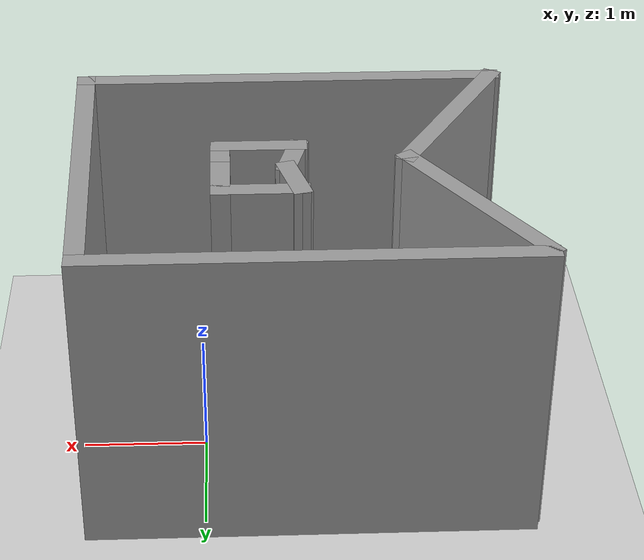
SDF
<sdf version="1.7">
 <world name="default">
  <scene><ambient>0.4 0.4 0.4 1</ambient><background>0.7 0.7 0.7 1</background><shadows>1</shadows></scene>
  <light name="sun" type="directional">
   <pose>0 0 10 0 -0 0</pose>
   <diffuse>0.8 0.8 0.8 1</diffuse>
   <specular>0.2 0.2 0.2 1</specular>
   <attenuation>
    <range>1000</range>
    <constant>0.9</constant>
    <linear>0.01</linear>
    <quadratic>0.001</quadratic>
   </attenuation>
   <direction>-0.5 0.1 -0.9</direction>
   <spot><inner_angle>0</inner_angle><outer_angle>0</outer_angle><falloff>0</falloff></spot>
  </light>
  <model name="ground_plane">
   <static>1</static>
   <link name="link">
    <collision name="collision">
     <geometry><plane><normal>0 0 1</normal><size>100 100</size></plane></geometry>
     <surface>
      <contact><collide_bitmask>65535</collide_bitmask></contact>
      <friction><ode><mu>100</mu><mu2>50</mu2></ode></friction>
     </surface>
    </collision>
    <visual name="visual">
     <cast_shadows>0</cast_shadows>
     <geometry><plane><normal>0 0 1</normal><size>100 100</size></plane></geometry>
     <material>
      <script><uri>file://media/materials/scripts/gazebo.material</uri><name>Gazebo/Grey</name></script>
     </material>
    </visual>
   </link>
  </model>
  <physics type="ode">
   <real_time_update_rate>1000</real_time_update_rate>
   <max_step_size>0.001</max_step_size>
   <real_time_factor>1</real_time_factor>
   <ode>
    <solver>
     <type>quick</type>
     <iters>150</iters>
     <precon_iters>0</precon_iters>
     <sor>1.4</sor>
     <use_dynamic_moi_rescaling>1</use_dynamic_moi_rescaling>
    </solver>
    <constraints>
     <cfm>1e-05</cfm>
     <erp>0.2</erp>
     <contact_max_correcting_vel>2000</contact_max_correcting_vel>
     <contact_surface_layer>0.01</contact_surface_layer>
    </constraints>
   </ode>
  </physics>
  <gravity>0 0 -9.8</gravity>
  <magnetic_field>6e-06 2.3e-05 -4.2e-05</magnetic_field>
  <atmosphere type="adiabatic"/>
  <spherical_coordinates>
   <surface_model>EARTH_WGS84</surface_model>
   <latitude_deg>0</latitude_deg>
   <longitude_deg>0</longitude_deg>
   <elevation>0</elevation>
   <heading_deg>0</heading_deg>
  </spherical_coordinates>
  <model name="world3">
   <pose>-0.793871 0.274171 0 0 -0 0</pose>
   <link name="Wall_0">
    <collision name="Wall_0_Collision">
     <geometry><box><size>2.92179 0.15 2.5</size></box></geometry>
     <pose>0 0 1.25 0 -0 0</pose>
    </collision>
    <visual name="Wall_0_Visual">
     <pose>0 0 1.25 0 -0 0</pose>
     <geometry><box><size>2.92179 0.15 2.5</size></box></geometry>
     <material>
      <script><uri>file://media/materials/scripts/gazebo.material</uri><name>Gazebo/Grey</name></script>
      <ambient>1 1 1 1</ambient>
     </material>
     <meta><layer>0</layer></meta>
    </visual>
    <pose>1.68952 -0.583449 0 0 -0 -1.54217</pose>
   </link>
   <link name="Wall_2">
    <collision name="Wall_2_Collision">
     <geometry><box><size>3.5 0.15 2.5</size></box></geometry>
     <pose>0 0 1.25 0 -0 0</pose>
    </collision>
    <visual name="Wall_2_Visual">
     <pose>0 0 1.25 0 -0 0</pose>
     <geometry><box><size>3.5 0.15 2.5</size></box></geometry>
     <material>
      <script><uri>file://media/materials/scripts/gazebo.material</uri><name>Gazebo/Grey</name></script>
      <ambient>1 1 1 1</ambient>
     </material>
     <meta><layer>0</layer></meta>
    </visual>
    <pose>0.0542 -1.96877 0 0 -0 3.14159</pose>
   </link>
   <link name="Wall_20">
    <collision name="Wall_20_Collision">
     <geometry><box><size>0.5 0.15 2.5</size></box></geometry>
     <pose>0 0 1.25 0 -0 0</pose>
    </collision>
    <visual name="Wall_20_Visual">
     <pose>0 0 1.25 0 -0 0</pose>
     <geometry><box><size>0.5 0.15 2.5</size></box></geometry>
     <material>
      <script><uri>file://media/materials/scripts/gazebo.material</uri><name>Gazebo/Grey</name></script>
      <ambient>1 1 1 1</ambient>
     </material>
     <meta><layer>0</layer></meta>
    </visual>
    <pose>0.625325 -0.292874 0 0 -0 1.5708</pose>
   </link>
   <link name="Wall_21">
    <collision name="Wall_21_Collision">
     <geometry><box><size>0.75 0.15 2.5</size></box></geometry>
     <pose>0 0 1.25 0 -0 0</pose>
    </collision>
    <visual name="Wall_21_Visual">
     <pose>0 0 1.25 0 -0 0</pose>
     <geometry><box><size>0.75 0.15 2.5</size></box></geometry>
     <material>
      <script><uri>file://media/materials/scripts/gazebo.material</uri><name>Gazebo/Grey</name></script>
      <ambient>1 1 1 1</ambient>
     </material>
     <meta><layer>0</layer></meta>
    </visual>
    <pose>0.325325 -0.117874 0 0 -0 3.14159</pose>
   </link>
   <link name="Wall_22">
    <collision name="Wall_22_Collision">
     <geometry><box><size>0.5 0.15 2.5</size></box></geometry>
     <pose>0 0 1.25 0 -0 0</pose>
    </collision>
    <visual name="Wall_22_Visual">
     <pose>0 0 1.25 0 -0 0</pose>
     <geometry><box><size>0.5 0.15 2.5</size></box></geometry>
     <material>
      <script><uri>file://media/materials/scripts/gazebo.material</uri><name>Gazebo/Grey</name></script>
      <ambient>1 1 1 1</ambient>
     </material>
     <meta><layer>0</layer></meta>
    </visual>
    <pose>0.070618 -0.286911 0 0 -0 -1.309</pose>
   </link>
   <link name="Wall_23">
    <collision name="Wall_23_Collision">
     <geometry><box><size>0.5 0.15 2.5</size></box></geometry>
     <pose>0 0 1.25 0 -0 0</pose>
    </collision>
    <visual name="Wall_23_Visual">
     <pose>0 0 1.25 0 -0 0</pose>
     <geometry><box><size>0.5 0.15 2.5</size></box></geometry>
     <material>
      <script><uri>file://media/materials/scripts/gazebo.material</uri><name>Gazebo/Grey</name></script>
      <ambient>1 1 1 1</ambient>
     </material>
     <meta><layer>0</layer></meta>
    </visual>
    <pose>0.070618 -0.624985 0 0 -0 -1.8326</pose>
   </link>
   <link name="Wall_24">
    <collision name="Wall_24_Collision">
     <geometry><box><size>0.75 0.15 2.5</size></box></geometry>
     <pose>0 0 1.25 0 -0 0</pose>
    </collision>
    <visual name="Wall_24_Visual">
     <pose>0 0 1.25 0 -0 0</pose>
     <geometry><box><size>0.75 0.15 2.5</size></box></geometry>
     <material>
      <script><uri>file://media/materials/scripts/gazebo.material</uri><name>Gazebo/Grey</name></script>
      <ambient>1 1 1 1</ambient>
     </material>
     <meta><layer>0</layer></meta>
    </visual>
    <pose>0.325325 -0.794022 0 0 -0 0</pose>
   </link>
   <link name="Wall_25">
    <collision name="Wall_25_Collision">
     <geometry><box><size>0.476148 0.15 2.5</size></box></geometry>
     <pose>0 0 1.25 0 -0 0</pose>
    </collision>
    <visual name="Wall_25_Visual">
     <pose>0 0 1.25 0 -0 0</pose>
     <geometry><box><size>0.476148 0.15 2.5</size></box></geometry>
     <material>
      <script><uri>file://media/materials/scripts/gazebo.material</uri><name>Gazebo/Grey</name></script>
      <ambient>1 1 1 1</ambient>
     </material>
     <meta><layer>0</layer></meta>
    </visual>
    <pose>0.625325 -0.630948 0 0 -0 1.5708</pose>
   </link>
   <link name="Wall_3">
    <collision name="Wall_3_Collision">
     <geometry><box><size>1.75 0.15 2.5</size></box></geometry>
     <pose>0 0 1.25 0 -0 0</pose>
    </collision>
    <visual name="Wall_3_Visual">
     <pose>0 0 1.25 0 -0 0</pose>
     <geometry><box><size>1.75 0.15 2.5</size></box></geometry>
     <material>
      <script><uri>file://media/materials/scripts/gazebo.material</uri><name>Gazebo/Grey</name></script>
      <ambient>1 1 1 1</ambient>
     </material>
     <meta><layer>0</layer></meta>
    </visual>
    <pose>-1.2208 -1.27595 0 0 -0 1.0472</pose>
   </link>
   <link name="Wall_4">
    <collision name="Wall_4_Collision">
     <geometry><box><size>1.78421 0.15 2.5</size></box></geometry>
     <pose>0 0 1.25 0 -0 0</pose>
    </collision>
    <visual name="Wall_4_Visual">
     <pose>0 0 1.25 0 -0 0</pose>
     <geometry><box><size>1.78421 0.15 2.5</size></box></geometry>
     <material>
      <script><uri>file://media/materials/scripts/gazebo.material</uri><name>Gazebo/Grey</name></script>
      <ambient>1 1 1 1</ambient>
     </material>
     <meta><layer>0</layer></meta>
    </visual>
    <pose>-1.26175 0.104781 0 0 -0 2.14082</pose>
   </link>
   <link name="Wall_6">
    <collision name="Wall_6_Collision">
     <geometry><box><size>3.5 0.15 2.5</size></box></geometry>
     <pose>0 0 1.25 0 -0 0</pose>
    </collision>
    <visual name="Wall_6_Visual">
     <pose>0 0 1.25 0 -0 0</pose>
     <geometry><box><size>3.5 0.15 2.5</size></box></geometry>
     <material>
      <script><uri>file://media/materials/scripts/gazebo.material</uri><name>Gazebo/Grey</name></script>
      <ambient>1 1 1 1</ambient>
     </material>
     <meta><layer>0</layer></meta>
    </visual>
    <pose>-0.02515 0.828326 0 0 -0 3.14159</pose>
   </link>
   <static>1</static>
  </model>
 </world>
</sdf>
